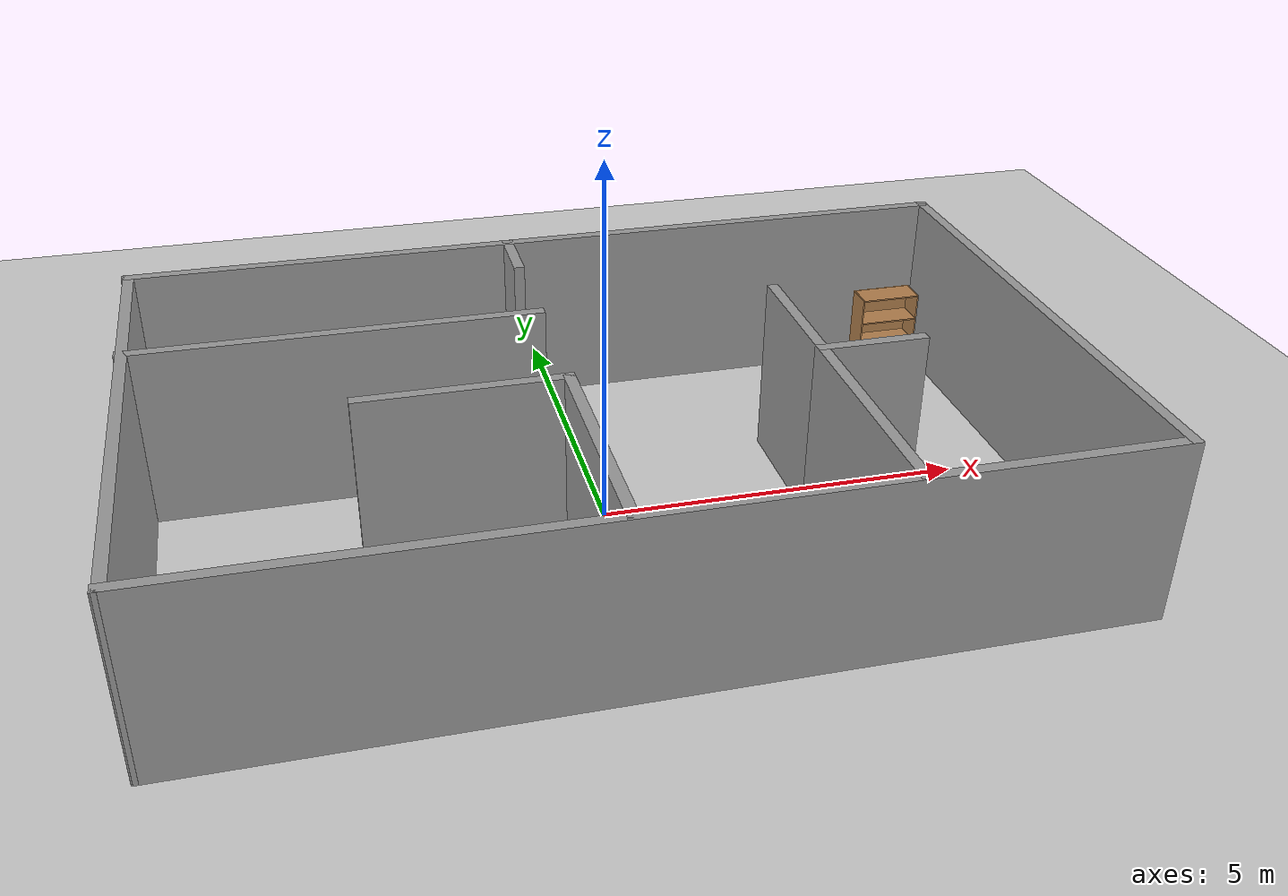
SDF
<sdf version="1.6">
 <world name="default">
  <light name="sun" type="directional">
   <pose>0 0 10 0 -0 0</pose>
   <diffuse>0.8 0.8 0.8 1</diffuse>
   <specular>0.2 0.2 0.2 1</specular>
   <attenuation>
    <range>1000</range>
    <constant>0.9</constant>
    <linear>0.01</linear>
    <quadratic>0.001</quadratic>
   </attenuation>
   <direction>-0.5 0.1 -0.9</direction>
  </light>
  <model name="ground_plane">
   <static>1</static>
   <link name="link">
    <collision name="collision">
     <geometry><plane><normal>0 0 1</normal><size>100 100</size></plane></geometry>
     <surface><friction><ode><mu>100</mu><mu2>50</mu2></ode></friction></surface>
    </collision>
    <visual name="visual">
     <cast_shadows>0</cast_shadows>
     <geometry><plane><normal>0 0 1</normal><size>100 100</size></plane></geometry>
     <material>
      <script><uri>file://media/materials/scripts/gazebo.material</uri><name>Gazebo/Grey</name></script>
     </material>
    </visual>
   </link>
  </model>
  <gravity>0 0 -9.8</gravity>
  <magnetic_field>6e-06 2.3e-05 -4.2e-05</magnetic_field>
  <atmosphere type="adiabatic"/>
  <physics name="default_physics" default="0" type="ode">
   <max_step_size>0.001</max_step_size>
   <real_time_factor>1</real_time_factor>
   <real_time_update_rate>1000</real_time_update_rate>
  </physics>
  <scene><ambient>0.4 0.4 0.4 1</ambient><background>0.7 0.7 0.7 1</background><shadows>1</shadows></scene>
  <audio><device>default</device></audio>
  <spherical_coordinates>
   <surface_model>EARTH_WGS84</surface_model>
   <latitude_deg>0</latitude_deg>
   <longitude_deg>0</longitude_deg>
   <elevation>0</elevation>
   <heading_deg>0</heading_deg>
  </spherical_coordinates>
  <model name="house">
   <link name="Wall_0">
    <collision name="Wall_0_Collision">
     <geometry><box><size>7.5 0.15 2.5</size></box></geometry>
     <pose>0 0 1.25 0 -0 0</pose>
    </collision>
    <visual name="Wall_0_Visual">
     <pose>0 0 1.25 0 -0 0</pose>
     <geometry><box><size>7.5 0.15 2.5</size></box></geometry>
     <material>
      <script><uri>file://media/materials/scripts/gazebo.material</uri><name>Gazebo/Grey</name></script>
      <ambient>1 1 1 1</ambient>
     </material>
     <meta><layer>0</layer></meta>
    </visual>
    <pose>-5.90785 0 0 0 -0 1.58007</pose>
   </link>
   <link name="Wall_1">
    <collision name="Wall_1_Collision">
     <geometry><box><size>12.0683 0.15 2.5</size></box></geometry>
     <pose>0 0 1.25 0 -0 0</pose>
    </collision>
    <visual name="Wall_1_Visual">
     <pose>0 0 1.25 0 -0 0</pose>
     <geometry><box><size>12.0683 0.15 2.5</size></box></geometry>
     <material>
      <script><uri>file://media/materials/scripts/gazebo.material</uri><name>Gazebo/Grey</name></script>
      <ambient>1 1 1 1</ambient>
     </material>
     <meta><layer>0</layer></meta>
    </visual>
    <pose>-0 3.675 0 0 -0 0</pose>
   </link>
   <link name="Wall_10">
    <collision name="Wall_10_Collision">
     <geometry><box><size>3.25 0.15 2.5</size></box></geometry>
     <pose>0 0 1.25 0 -0 0</pose>
    </collision>
    <visual name="Wall_10_Visual">
     <pose>0 0 1.25 0 -0 0</pose>
     <geometry><box><size>3.25 0.15 2.5</size></box></geometry>
     <material>
      <script><uri>file://media/materials/scripts/gazebo.material</uri><name>Gazebo/Grey</name></script>
      <ambient>1 1 1 1</ambient>
     </material>
     <meta><layer>0</layer></meta>
    </visual>
    <pose>2.69875 -2.10636 0 0 -0 1.5708</pose>
   </link>
   <link name="Wall_11">
    <collision name="Wall_11_Collision">
     <geometry><box><size>1.5 0.15 2.5</size></box></geometry>
     <pose>0 0 1.25 0 -0 0</pose>
    </collision>
    <visual name="Wall_11_Visual">
     <pose>0 0 1.25 0 -0 0</pose>
     <geometry><box><size>1.5 0.15 2.5</size></box></geometry>
     <material>
      <script><uri>file://media/materials/scripts/gazebo.material</uri><name>Gazebo/Grey</name></script>
      <ambient>1 1 1 1</ambient>
     </material>
     <meta><layer>0</layer></meta>
    </visual>
    <pose>3.37375 -0.556359 0 0 -0 0</pose>
   </link>
   <link name="Wall_13">
    <collision name="Wall_13_Collision">
     <geometry><box><size>2 0.15 2.5</size></box></geometry>
     <pose>0 0 1.25 0 -0 0</pose>
    </collision>
    <visual name="Wall_13_Visual">
     <pose>0 0 1.25 0 -0 0</pose>
     <geometry><box><size>2 0.15 2.5</size></box></geometry>
     <material>
      <script><uri>file://media/materials/scripts/gazebo.material</uri><name>Gazebo/Grey</name></script>
      <ambient>1 1 1 1</ambient>
     </material>
     <meta><layer>0</layer></meta>
    </visual>
    <pose>2.69875 0.368641 0 0 -0 1.5708</pose>
   </link>
   <link name="Wall_15">
    <collision name="Wall_15_Collision">
     <geometry><box><size>5.5 0.15 2.5</size></box></geometry>
     <pose>0 0 1.25 0 -0 0</pose>
    </collision>
    <visual name="Wall_15_Visual">
     <pose>0 0 1.25 0 -0 0</pose>
     <geometry><box><size>5.5 0.15 2.5</size></box></geometry>
     <material>
      <script><uri>file://media/materials/scripts/gazebo.material</uri><name>Gazebo/Grey</name></script>
      <ambient>1 1 1 1</ambient>
     </material>
     <meta><layer>0</layer></meta>
    </visual>
    <pose>-3.26568 1.31001 0 0 -0 0</pose>
   </link>
   <link name="Wall_17">
    <collision name="Wall_17_Collision">
     <geometry><box><size>7.5 0.15 2.5</size></box></geometry>
     <pose>0 0 1.25 0 -0 0</pose>
    </collision>
    <visual name="Wall_17_Visual">
     <pose>0 0 1.25 0 -0 0</pose>
     <geometry><box><size>7.5 0.15 2.5</size></box></geometry>
     <material>
      <script><uri>file://media/materials/scripts/gazebo.material</uri><name>Gazebo/Grey</name></script>
      <ambient>1 1 1 1</ambient>
     </material>
     <meta><layer>0</layer></meta>
    </visual>
    <pose>5.95915 0 0 0 -0 1.5708</pose>
   </link>
   <link name="Wall_3">
    <collision name="Wall_3_Collision">
     <geometry><box><size>12 0.15 2.5</size></box></geometry>
     <pose>0 0 1.25 0 -0 0</pose>
    </collision>
    <visual name="Wall_3_Visual">
     <pose>0 0 1.25 0 -0 0</pose>
     <geometry><box><size>12 0.15 2.5</size></box></geometry>
     <material>
      <script><uri>file://media/materials/scripts/gazebo.material</uri><name>Gazebo/Grey</name></script>
      <ambient>1 1 1 1</ambient>
     </material>
     <meta><layer>0</layer></meta>
    </visual>
    <pose>0.034148 -3.675 0 0 -0 3.14159</pose>
   </link>
   <link name="Wall_5">
    <collision name="Wall_5_Collision">
     <geometry><box><size>3.25 0.15 2.5</size></box></geometry>
     <pose>0 0 1.25 0 -0 0</pose>
    </collision>
    <visual name="Wall_5_Visual">
     <pose>0 0 1.25 0 -0 0</pose>
     <geometry><box><size>3.25 0.15 2.5</size></box></geometry>
     <material>
      <script><uri>file://media/materials/scripts/gazebo.material</uri><name>Gazebo/Grey</name></script>
      <ambient>1 1 1 1</ambient>
     </material>
     <meta><layer>0</layer></meta>
    </visual>
    <pose>-0.576344 -2.105 0 0 -0 1.5708</pose>
   </link>
   <link name="Wall_6">
    <collision name="Wall_6_Collision">
     <geometry><box><size>2.75 0.15 2.5</size></box></geometry>
     <pose>0 0 1.25 0 -0 0</pose>
    </collision>
    <visual name="Wall_6_Visual">
     <pose>0 0 1.25 0 -0 0</pose>
     <geometry><box><size>2.75 0.15 2.5</size></box></geometry>
     <material>
      <script><uri>file://media/materials/scripts/gazebo.material</uri><name>Gazebo/Grey</name></script>
      <ambient>1 1 1 1</ambient>
     </material>
     <meta><layer>0</layer></meta>
    </visual>
    <pose>-1.87634 -0.555 0 0 -0 3.14159</pose>
   </link>
   <link name="Wall_8">
    <collision name="Wall_8_Collision">
     <geometry><box><size>1 0.15 2.5</size></box></geometry>
     <pose>0 0 1.25 0 -0 0</pose>
    </collision>
    <visual name="Wall_8_Visual">
     <pose>0 0 1.25 0 -0 0</pose>
     <geometry><box><size>1 0.15 2.5</size></box></geometry>
     <material>
      <script><uri>file://media/materials/scripts/gazebo.material</uri><name>Gazebo/Grey</name></script>
      <ambient>1 1 1 1</ambient>
     </material>
     <meta><layer>0</layer></meta>
    </visual>
    <pose>-0.588846 3.2437 0 0 -0 -1.5708</pose>
   </link>
   <static>1</static>
  </model>
  <model name="bookshelf">
   <static>1</static>
   <link name="link">
    <inertial><mass>1</mass></inertial>
    <collision name="back">
     <pose>0 0.005 0.6 0 -0 0</pose>
     <geometry><box><size>0.9 0.01 1.2</size></box></geometry>
    </collision>
    <visual name="visual1">
     <pose>0 0.005 0.6 0 -0 0</pose>
     <geometry><box><size>0.9 0.01 1.2</size></box></geometry>
     <material>
      <script><uri>file://media/materials/scripts/gazebo.material</uri><name>Gazebo/Wood</name></script>
     </material>
    </visual>
    <collision name="left_side">
     <pose>0.45 -0.195 0.6 0 -0 0</pose>
     <geometry><box><size>0.02 0.4 1.2</size></box></geometry>
    </collision>
    <visual name="visual2">
     <pose>0.45 -0.195 0.6 0 -0 0</pose>
     <geometry><box><size>0.02 0.4 1.2</size></box></geometry>
     <material>
      <script><uri>file://media/materials/scripts/gazebo.material</uri><name>Gazebo/Wood</name></script>
     </material>
    </visual>
    <collision name="right_side">
     <pose>-0.45 -0.195 0.6 0 -0 0</pose>
     <geometry><box><size>0.02 0.4 1.2</size></box></geometry>
    </collision>
    <visual name="visual3">
     <pose>-0.45 -0.195 0.6 0 -0 0</pose>
     <geometry><box><size>0.02 0.4 1.2</size></box></geometry>
     <material>
      <script><uri>file://media/materials/scripts/gazebo.material</uri><name>Gazebo/Wood</name></script>
     </material>
    </visual>
    <collision name="bottom">
     <pose>0 -0.195 0.03 0 -0 0</pose>
     <geometry><box><size>0.88 0.4 0.06</size></box></geometry>
    </collision>
    <visual name="visual4">
     <pose>0 -0.195 0.03 0 -0 0</pose>
     <geometry><box><size>0.88 0.4 0.06</size></box></geometry>
     <material>
      <script><uri>file://media/materials/scripts/gazebo.material</uri><name>Gazebo/Wood</name></script>
     </material>
    </visual>
    <collision name="top">
     <pose>0 -0.195 1.19 0 -0 0</pose>
     <geometry><box><size>0.88 0.4 0.02</size></box></geometry>
    </collision>
    <visual name="visual5">
     <pose>0 -0.195 1.19 0 -0 0</pose>
     <geometry><box><size>0.88 0.4 0.02</size></box></geometry>
     <material>
      <script><uri>file://media/materials/scripts/gazebo.material</uri><name>Gazebo/Wood</name></script>
     </material>
    </visual>
    <collision name="low_shelf">
     <pose>0 -0.195 0.43 0 -0 0</pose>
     <geometry><box><size>0.88 0.4 0.02</size></box></geometry>
    </collision>
    <visual name="visual6">
     <pose>0 -0.195 0.43 0 -0 0</pose>
     <geometry><box><size>0.88 0.4 0.02</size></box></geometry>
     <material>
      <script><uri>file://media/materials/scripts/gazebo.material</uri><name>Gazebo/Wood</name></script>
     </material>
    </visual>
    <collision name="high_shelf">
     <pose>0 -0.195 0.8 0 -0 0</pose>
     <geometry><box><size>0.88 0.4 0.02</size></box></geometry>
    </collision>
    <visual name="visual7">
     <pose>0 -0.195 0.8 0 -0 0</pose>
     <geometry><box><size>0.88 0.4 0.02</size></box></geometry>
     <material>
      <script><uri>file://media/materials/scripts/gazebo.material</uri><name>Gazebo/Wood</name></script>
     </material>
    </visual>
   </link>
   <pose>5.34529 3.49641 0 0 -0 0</pose>
  </model>
 </world>
</sdf>
